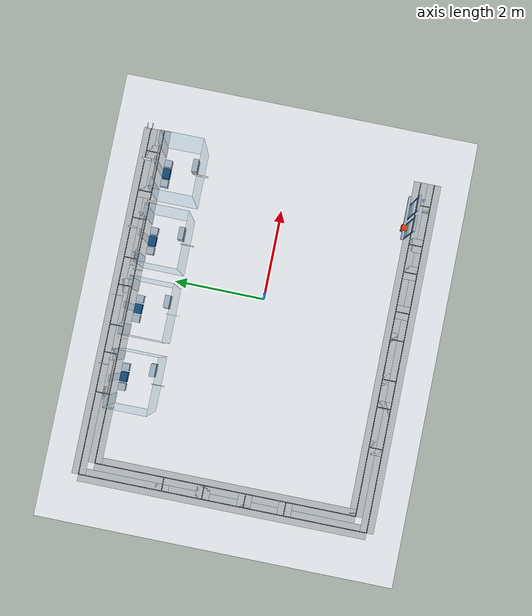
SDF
<sdf version="1.9">
 <world name="wafer_transport">
  <model name="loop_floor">
   <static>true</static>
   <link name="structure">
    <inertial>
     <mass>0.1</mass>
     <inertia>
      <ixx>0.00016666666666666672</ixx>
      <iyy>0.00016666666666666672</iyy>
      <izz>0.00016666666666666672</izz>
      <ixy>0</ixy>
      <ixz>0</ixz>
      <iyz>0</iyz>
     </inertia>
    </inertial>
    <visual name="floor">
     <pose>-0.65 0.0 -0.015 0 0 0</pose>
     <geometry><box><size>10.0 8.0 0.03</size></box></geometry>
     <material><ambient>0.93 0.95 0.97 1</ambient><diffuse>0.93 0.95 0.97 1</diffuse></material>
    </visual>
    <collision name="floor_collision">
     <pose>-0.65 0.0 -0.015 0 0 0</pose>
     <geometry><box><size>10.0 8.0 0.03</size></box></geometry>
     <surface><friction><ode><mu>0.9</mu><mu2>0.9</mu2></ode></friction></surface>
    </collision>
    <visual name="corridor_0">
     <pose>-0.6672 3.2224 0.00015 0 0 3.141592653589793</pose>
     <geometry><box><size>7.8275999999999994 0.3048 0.0002</size></box></geometry>
     <material><ambient>.72 .75 .77 1</ambient><diffuse>.72 .75 .77 1</diffuse></material>
    </visual>
    <visual name="tape_0">
     <pose>-0.6672 3.2224 0.0003 0 0 3.141592653589793</pose>
     <geometry><box><size>7.8266 0.018 0.0005</size></box></geometry>
     <material><ambient>.005 .005 .005 1</ambient><diffuse>.005 .005 .005 1</diffuse></material>
    </visual>
    <visual name="corridor_1">
     <pose>-4.58 0.0 0.00015 0 0 -1.5707963267948966</pose>
     <geometry><box><size>6.4468 0.3048 0.0002</size></box></geometry>
     <material><ambient>.72 .75 .77 1</ambient><diffuse>.72 .75 .77 1</diffuse></material>
    </visual>
    <visual name="tape_1">
     <pose>-4.58 0.0 0.0003 0 0 -1.5707963267948966</pose>
     <geometry><box><size>6.4458 0.018 0.0005</size></box></geometry>
     <material><ambient>.005 .005 .005 1</ambient><diffuse>.005 .005 .005 1</diffuse></material>
    </visual>
    <visual name="corridor_2">
     <pose>-0.6672 -3.2224 0.00015 0 0 0.0</pose>
     <geometry><box><size>7.8275999999999994 0.3048 0.0002</size></box></geometry>
     <material><ambient>.72 .75 .77 1</ambient><diffuse>.72 .75 .77 1</diffuse></material>
    </visual>
    <visual name="tape_2">
     <pose>-0.6672 -3.2224 0.0003 0 0 0.0</pose>
     <geometry><box><size>7.8266 0.018 0.0005</size></box></geometry>
     <material><ambient>.005 .005 .005 1</ambient><diffuse>.005 .005 .005 1</diffuse></material>
    </visual>
    <visual name="corridor_3">
     <pose>-0.5147999999999999 2.9175999999999997 0.00015 0 0 3.141592653589793</pose>
     <geometry><box><size>7.522799999999999 0.3048 0.0002</size></box></geometry>
     <material><ambient>.72 .75 .77 1</ambient><diffuse>.72 .75 .77 1</diffuse></material>
    </visual>
    <visual name="tape_3">
     <pose>-0.5147999999999999 2.9175999999999997 0.0003 0 0 3.141592653589793</pose>
     <geometry><box><size>7.5218 0.018 0.0005</size></box></geometry>
     <material><ambient>.005 .005 .005 1</ambient><diffuse>.005 .005 .005 1</diffuse></material>
    </visual>
    <visual name="corridor_4">
     <pose>-4.2752 0.0 0.00015 0 0 -1.5707963267948966</pose>
     <geometry><box><size>5.837199999999999 0.3048 0.0002</size></box></geometry>
     <material><ambient>.72 .75 .77 1</ambient><diffuse>.72 .75 .77 1</diffuse></material>
    </visual>
    <visual name="tape_4">
     <pose>-4.2752 0.0 0.0003 0 0 -1.5707963267948966</pose>
     <geometry><box><size>5.8362 0.018 0.0005</size></box></geometry>
     <material><ambient>.005 .005 .005 1</ambient><diffuse>.005 .005 .005 1</diffuse></material>
    </visual>
    <visual name="corridor_5">
     <pose>-0.5147999999999999 -2.9175999999999997 0.00015 0 0 0.0</pose>
     <geometry><box><size>7.522799999999999 0.3048 0.0002</size></box></geometry>
     <material><ambient>.72 .75 .77 1</ambient><diffuse>.72 .75 .77 1</diffuse></material>
    </visual>
    <visual name="tape_5">
     <pose>-0.5147999999999999 -2.9175999999999997 0.0003 0 0 0.0</pose>
     <geometry><box><size>7.5218 0.018 0.0005</size></box></geometry>
     <material><ambient>.005 .005 .005 1</ambient><diffuse>.005 .005 .005 1</diffuse></material>
    </visual>
    <visual name="corridor_6">
     <pose>2.736 3.07 0.00015 0 0 -1.5707963267948966</pose>
     <geometry><box><size>0.3068000000000002 0.3048 0.0002</size></box></geometry>
     <material><ambient>.72 .75 .77 1</ambient><diffuse>.72 .75 .77 1</diffuse></material>
    </visual>
    <visual name="tape_6">
     <pose>2.736 3.07 0.0003 0 0 -1.5707963267948966</pose>
     <geometry><box><size>0.3058000000000002 0.018 0.0005</size></box></geometry>
     <material><ambient>.005 .005 .005 1</ambient><diffuse>.005 .005 .005 1</diffuse></material>
    </visual>
    <visual name="corridor_7">
     <pose>1.2120000000000002 3.07 0.00015 0 0 -1.5707963267948974</pose>
     <geometry><box><size>0.3068000000000002 0.3048 0.0002</size></box></geometry>
     <material><ambient>.72 .75 .77 1</ambient><diffuse>.72 .75 .77 1</diffuse></material>
    </visual>
    <visual name="tape_7">
     <pose>1.2120000000000002 3.07 0.0003 0 0 -1.5707963267948974</pose>
     <geometry><box><size>0.3058000000000002 0.018 0.0005</size></box></geometry>
     <material><ambient>.005 .005 .005 1</ambient><diffuse>.005 .005 .005 1</diffuse></material>
    </visual>
    <visual name="corridor_8">
     <pose>-0.31199999999999994 3.07 0.00015 0 0 -1.5707963267948968</pose>
     <geometry><box><size>0.3068000000000002 0.3048 0.0002</size></box></geometry>
     <material><ambient>.72 .75 .77 1</ambient><diffuse>.72 .75 .77 1</diffuse></material>
    </visual>
    <visual name="tape_8">
     <pose>-0.31199999999999994 3.07 0.0003 0 0 -1.5707963267948968</pose>
     <geometry><box><size>0.3058000000000002 0.018 0.0005</size></box></geometry>
     <material><ambient>.005 .005 .005 1</ambient><diffuse>.005 .005 .005 1</diffuse></material>
    </visual>
    <visual name="corridor_9">
     <pose>-1.8359999999999999 3.07 0.00015 0 0 -1.5707963267948974</pose>
     <geometry><box><size>0.3068000000000002 0.3048 0.0002</size></box></geometry>
     <material><ambient>.72 .75 .77 1</ambient><diffuse>.72 .75 .77 1</diffuse></material>
    </visual>
    <visual name="tape_9">
     <pose>-1.8359999999999999 3.07 0.0003 0 0 -1.5707963267948974</pose>
     <geometry><box><size>0.3058000000000002 0.018 0.0005</size></box></geometry>
     <material><ambient>.005 .005 .005 1</ambient><diffuse>.005 .005 .005 1</diffuse></material>
    </visual>
    <visual name="corridor_10">
     <pose>-4.4276 1.3644 0.00015 0 0 0.0</pose>
     <geometry><box><size>0.3068000000000002 0.3048 0.0002</size></box></geometry>
     <material><ambient>.72 .75 .77 1</ambient><diffuse>.72 .75 .77 1</diffuse></material>
    </visual>
    <visual name="tape_10">
     <pose>-4.4276 1.3644 0.0003 0 0 0.0</pose>
     <geometry><box><size>0.3058000000000002 0.018 0.0005</size></box></geometry>
     <material><ambient>.005 .005 .005 1</ambient><diffuse>.005 .005 .005 1</diffuse></material>
    </visual>
    <visual name="corridor_11">
     <pose>-4.4276 -0.46440000000000003 0.00015 0 0 0.0</pose>
     <geometry><box><size>0.3068000000000002 0.3048 0.0002</size></box></geometry>
     <material><ambient>.72 .75 .77 1</ambient><diffuse>.72 .75 .77 1</diffuse></material>
    </visual>
    <visual name="tape_11">
     <pose>-4.4276 -0.46440000000000003 0.0003 0 0 0.0</pose>
     <geometry><box><size>0.3058000000000002 0.018 0.0005</size></box></geometry>
     <material><ambient>.005 .005 .005 1</ambient><diffuse>.005 .005 .005 1</diffuse></material>
    </visual>
    <visual name="corridor_12">
     <pose>-2.736 -3.07 0.00015 0 0 1.5707963267948966</pose>
     <geometry><box><size>0.3068000000000002 0.3048 0.0002</size></box></geometry>
     <material><ambient>.72 .75 .77 1</ambient><diffuse>.72 .75 .77 1</diffuse></material>
    </visual>
    <visual name="tape_12">
     <pose>-2.736 -3.07 0.0003 0 0 1.5707963267948966</pose>
     <geometry><box><size>0.3058000000000002 0.018 0.0005</size></box></geometry>
     <material><ambient>.005 .005 .005 1</ambient><diffuse>.005 .005 .005 1</diffuse></material>
    </visual>
    <visual name="corridor_13">
     <pose>-1.212 -3.07 0.00015 0 0 1.5707963267948966</pose>
     <geometry><box><size>0.3068000000000002 0.3048 0.0002</size></box></geometry>
     <material><ambient>.72 .75 .77 1</ambient><diffuse>.72 .75 .77 1</diffuse></material>
    </visual>
    <visual name="tape_13">
     <pose>-1.212 -3.07 0.0003 0 0 1.5707963267948966</pose>
     <geometry><box><size>0.3058000000000002 0.018 0.0005</size></box></geometry>
     <material><ambient>.005 .005 .005 1</ambient><diffuse>.005 .005 .005 1</diffuse></material>
    </visual>
    <visual name="corridor_14">
     <pose>0.312 -3.07 0.00015 0 0 1.5707963267948966</pose>
     <geometry><box><size>0.3068000000000002 0.3048 0.0002</size></box></geometry>
     <material><ambient>.72 .75 .77 1</ambient><diffuse>.72 .75 .77 1</diffuse></material>
    </visual>
    <visual name="tape_14">
     <pose>0.312 -3.07 0.0003 0 0 1.5707963267948966</pose>
     <geometry><box><size>0.3058000000000002 0.018 0.0005</size></box></geometry>
     <material><ambient>.005 .005 .005 1</ambient><diffuse>.005 .005 .005 1</diffuse></material>
    </visual>
    <visual name="corridor_15">
     <pose>1.836 -3.07 0.00015 0 0 1.5707963267948966</pose>
     <geometry><box><size>0.3068000000000002 0.3048 0.0002</size></box></geometry>
     <material><ambient>.72 .75 .77 1</ambient><diffuse>.72 .75 .77 1</diffuse></material>
    </visual>
    <visual name="tape_15">
     <pose>1.836 -3.07 0.0003 0 0 1.5707963267948966</pose>
     <geometry><box><size>0.3058000000000002 0.018 0.0005</size></box></geometry>
     <material><ambient>.005 .005 .005 1</ambient><diffuse>.005 .005 .005 1</diffuse></material>
    </visual>
    <visual name="corridor_16">
     <pose>1.8360000000000003 3.07 0.00015 0 0 1.570796326794896</pose>
     <geometry><box><size>0.3068000000000002 0.3048 0.0002</size></box></geometry>
     <material><ambient>.72 .75 .77 1</ambient><diffuse>.72 .75 .77 1</diffuse></material>
    </visual>
    <visual name="tape_16">
     <pose>1.8360000000000003 3.07 0.0003 0 0 1.570796326794896</pose>
     <geometry><box><size>0.3058000000000002 0.018 0.0005</size></box></geometry>
     <material><ambient>.005 .005 .005 1</ambient><diffuse>.005 .005 .005 1</diffuse></material>
    </visual>
    <visual name="corridor_17">
     <pose>0.31200000000000006 3.07 0.00015 0 0 1.5707963267948963</pose>
     <geometry><box><size>0.3068000000000002 0.3048 0.0002</size></box></geometry>
     <material><ambient>.72 .75 .77 1</ambient><diffuse>.72 .75 .77 1</diffuse></material>
    </visual>
    <visual name="tape_17">
     <pose>0.31200000000000006 3.07 0.0003 0 0 1.5707963267948963</pose>
     <geometry><box><size>0.3058000000000002 0.018 0.0005</size></box></geometry>
     <material><ambient>.005 .005 .005 1</ambient><diffuse>.005 .005 .005 1</diffuse></material>
    </visual>
    <visual name="corridor_18">
     <pose>-1.2119999999999997 3.07 0.00015 0 0 1.570796326794896</pose>
     <geometry><box><size>0.3068000000000002 0.3048 0.0002</size></box></geometry>
     <material><ambient>.72 .75 .77 1</ambient><diffuse>.72 .75 .77 1</diffuse></material>
    </visual>
    <visual name="tape_18">
     <pose>-1.2119999999999997 3.07 0.0003 0 0 1.570796326794896</pose>
     <geometry><box><size>0.3058000000000002 0.018 0.0005</size></box></geometry>
     <material><ambient>.005 .005 .005 1</ambient><diffuse>.005 .005 .005 1</diffuse></material>
    </visual>
    <visual name="corridor_19">
     <pose>-2.736 3.07 0.00015 0 0 1.5707963267948966</pose>
     <geometry><box><size>0.3068000000000002 0.3048 0.0002</size></box></geometry>
     <material><ambient>.72 .75 .77 1</ambient><diffuse>.72 .75 .77 1</diffuse></material>
    </visual>
    <visual name="tape_19">
     <pose>-2.736 3.07 0.0003 0 0 1.5707963267948966</pose>
     <geometry><box><size>0.3058000000000002 0.018 0.0005</size></box></geometry>
     <material><ambient>.005 .005 .005 1</ambient><diffuse>.005 .005 .005 1</diffuse></material>
    </visual>
    <visual name="corridor_20">
     <pose>-4.4276 0.4643999999999999 0.00015 0 0 3.141592653589793</pose>
     <geometry><box><size>0.3068000000000002 0.3048 0.0002</size></box></geometry>
     <material><ambient>.72 .75 .77 1</ambient><diffuse>.72 .75 .77 1</diffuse></material>
    </visual>
    <visual name="tape_20">
     <pose>-4.4276 0.4643999999999999 0.0003 0 0 3.141592653589793</pose>
     <geometry><box><size>0.3058000000000002 0.018 0.0005</size></box></geometry>
     <material><ambient>.005 .005 .005 1</ambient><diffuse>.005 .005 .005 1</diffuse></material>
    </visual>
    <visual name="corridor_21">
     <pose>-4.4276 -1.3644 0.00015 0 0 3.141592653589793</pose>
     <geometry><box><size>0.3068000000000002 0.3048 0.0002</size></box></geometry>
     <material><ambient>.72 .75 .77 1</ambient><diffuse>.72 .75 .77 1</diffuse></material>
    </visual>
    <visual name="tape_21">
     <pose>-4.4276 -1.3644 0.0003 0 0 3.141592653589793</pose>
     <geometry><box><size>0.3058000000000002 0.018 0.0005</size></box></geometry>
     <material><ambient>.005 .005 .005 1</ambient><diffuse>.005 .005 .005 1</diffuse></material>
    </visual>
    <visual name="corridor_22">
     <pose>-1.836 -3.07 0.00015 0 0 -1.5707963267948966</pose>
     <geometry><box><size>0.3068000000000002 0.3048 0.0002</size></box></geometry>
     <material><ambient>.72 .75 .77 1</ambient><diffuse>.72 .75 .77 1</diffuse></material>
    </visual>
    <visual name="tape_22">
     <pose>-1.836 -3.07 0.0003 0 0 -1.5707963267948966</pose>
     <geometry><box><size>0.3058000000000002 0.018 0.0005</size></box></geometry>
     <material><ambient>.005 .005 .005 1</ambient><diffuse>.005 .005 .005 1</diffuse></material>
    </visual>
    <visual name="corridor_23">
     <pose>-0.312 -3.07 0.00015 0 0 -1.5707963267948966</pose>
     <geometry><box><size>0.3068000000000002 0.3048 0.0002</size></box></geometry>
     <material><ambient>.72 .75 .77 1</ambient><diffuse>.72 .75 .77 1</diffuse></material>
    </visual>
    <visual name="tape_23">
     <pose>-0.312 -3.07 0.0003 0 0 -1.5707963267948966</pose>
     <geometry><box><size>0.3058000000000002 0.018 0.0005</size></box></geometry>
     <material><ambient>.005 .005 .005 1</ambient><diffuse>.005 .005 .005 1</diffuse></material>
    </visual>
    <visual name="corridor_24">
     <pose>1.212 -3.07 0.00015 0 0 -1.5707963267948966</pose>
     <geometry><box><size>0.3068000000000002 0.3048 0.0002</size></box></geometry>
     <material><ambient>.72 .75 .77 1</ambient><diffuse>.72 .75 .77 1</diffuse></material>
    </visual>
    <visual name="tape_24">
     <pose>1.212 -3.07 0.0003 0 0 -1.5707963267948966</pose>
     <geometry><box><size>0.3058000000000002 0.018 0.0005</size></box></geometry>
     <material><ambient>.005 .005 .005 1</ambient><diffuse>.005 .005 .005 1</diffuse></material>
    </visual>
    <visual name="corridor_25">
     <pose>2.736 -3.07 0.00015 0 0 -1.5707963267948966</pose>
     <geometry><box><size>0.3068000000000002 0.3048 0.0002</size></box></geometry>
     <material><ambient>.72 .75 .77 1</ambient><diffuse>.72 .75 .77 1</diffuse></material>
    </visual>
    <visual name="tape_25">
     <pose>2.736 -3.07 0.0003 0 0 -1.5707963267948966</pose>
     <geometry><box><size>0.3058000000000002 0.018 0.0005</size></box></geometry>
     <material><ambient>.005 .005 .005 1</ambient><diffuse>.005 .005 .005 1</diffuse></material>
    </visual>
    <visual name="loading_rail_-0.054">
     <pose>3.2456 3.1684 0.142 0 0 0</pose>
     <geometry><box><size>0.15 0.016 0.008</size></box></geometry>
     <material><ambient>0.65 0.72 0.78 1</ambient><diffuse>0.65 0.72 0.78 1</diffuse></material>
    </visual>
    <collision name="loading_rail_-0.054_collision">
     <pose>3.2456 3.1684 0.142 0 0 0</pose>
     <geometry><box><size>0.15 0.016 0.008</size></box></geometry>
     <surface><friction><ode><mu>0.9</mu><mu2>0.9</mu2></ode></friction></surface>
    </collision>
    <visual name="loading_rail_0.054">
     <pose>3.2456 3.2763999999999998 0.142 0 0 0</pose>
     <geometry><box><size>0.15 0.016 0.008</size></box></geometry>
     <material><ambient>0.65 0.72 0.78 1</ambient><diffuse>0.65 0.72 0.78 1</diffuse></material>
    </visual>
    <collision name="loading_rail_0.054_collision">
     <pose>3.2456 3.2763999999999998 0.142 0 0 0</pose>
     <geometry><box><size>0.15 0.016 0.008</size></box></geometry>
     <surface><friction><ode><mu>0.9</mu><mu2>0.9</mu2></ode></friction></surface>
    </collision>
   </link>
  </model>
  <model name="room_1">
   <static>true</static>
   <link name="structure">
    <inertial>
     <mass>0.1</mass>
     <inertia>
      <ixx>0.00016666666666666672</ixx>
      <iyy>0.00016666666666666672</iyy>
      <izz>0.00016666666666666672</izz>
      <ixy>0</ixy>
      <ixz>0</ixz>
      <iyz>0</iyz>
     </inertia>
    </inertial>
    <visual name="glass_back">
     <pose>2.286 1.8427999999999998 0.6096 0 0 3.141592653589793</pose>
     <geometry><box><size>1.2192 0.012 1.2192</size></box></geometry>
     <material><ambient>.5 .75 .9 1</ambient><diffuse>.5 .75 .9 1</diffuse></material>
     <transparency>0.82</transparency>
    </visual>
    <collision name="glass_back_collision">
     <pose>2.286 1.8427999999999998 0.6096 0 0 3.141592653589793</pose>
     <geometry><box><size>1.2192 0.012 1.2192</size></box></geometry>
     <surface><friction><ode><mu>0.9</mu><mu2>0.9</mu2></ode></friction></surface>
    </collision>
    <visual name="glass_left">
     <pose>2.8956 2.3 0.6096 0 0 3.141592653589793</pose>
     <geometry><box><size>0.012 0.9144 1.2192</size></box></geometry>
     <material><ambient>.5 .75 .9 1</ambient><diffuse>.5 .75 .9 1</diffuse></material>
     <transparency>0.82</transparency>
    </visual>
    <collision name="glass_left_collision">
     <pose>2.8956 2.3 0.6096 0 0 3.141592653589793</pose>
     <geometry><box><size>0.012 0.9144 1.2192</size></box></geometry>
     <surface><friction><ode><mu>0.9</mu><mu2>0.9</mu2></ode></friction></surface>
    </collision>
    <visual name="glass_right">
     <pose>1.6764000000000001 2.3 0.6096 0 0 3.141592653589793</pose>
     <geometry><box><size>0.012 0.9144 1.2192</size></box></geometry>
     <material><ambient>.5 .75 .9 1</ambient><diffuse>.5 .75 .9 1</diffuse></material>
     <transparency>0.82</transparency>
    </visual>
    <collision name="glass_right_collision">
     <pose>1.6764000000000001 2.3 0.6096 0 0 3.141592653589793</pose>
     <geometry><box><size>0.012 0.9144 1.2192</size></box></geometry>
     <surface><friction><ode><mu>0.9</mu><mu2>0.9</mu2></ode></friction></surface>
    </collision>
    <visual name="glass_front_0">
     <pose>2.777 2.7571999999999997 0.6096 0 0 3.141592653589793</pose>
     <geometry><box><size>0.23720000000000002 0.012 1.2192</size></box></geometry>
     <material><ambient>.5 .75 .9 1</ambient><diffuse>.5 .75 .9 1</diffuse></material>
     <transparency>0.82</transparency>
    </visual>
    <collision name="glass_front_0_collision">
     <pose>2.777 2.7571999999999997 0.6096 0 0 3.141592653589793</pose>
     <geometry><box><size>0.23720000000000002 0.012 1.2192</size></box></geometry>
     <surface><friction><ode><mu>0.9</mu><mu2>0.9</mu2></ode></friction></surface>
    </collision>
    <visual name="glass_front_1">
     <pose>2.286 2.7571999999999997 0.6096 0 0 3.141592653589793</pose>
     <geometry><box><size>0.1352 0.012 1.2192</size></box></geometry>
     <material><ambient>.5 .75 .9 1</ambient><diffuse>.5 .75 .9 1</diffuse></material>
     <transparency>0.82</transparency>
    </visual>
    <collision name="glass_front_1_collision">
     <pose>2.286 2.7571999999999997 0.6096 0 0 3.141592653589793</pose>
     <geometry><box><size>0.1352 0.012 1.2192</size></box></geometry>
     <surface><friction><ode><mu>0.9</mu><mu2>0.9</mu2></ode></friction></surface>
    </collision>
    <visual name="glass_front_2">
     <pose>1.795 2.7571999999999997 0.6096 0 0 3.141592653589793</pose>
     <geometry><box><size>0.23720000000000002 0.012 1.2192</size></box></geometry>
     <material><ambient>.5 .75 .9 1</ambient><diffuse>.5 .75 .9 1</diffuse></material>
     <transparency>0.82</transparency>
    </visual>
    <collision name="glass_front_2_collision">
     <pose>1.795 2.7571999999999997 0.6096 0 0 3.141592653589793</pose>
     <geometry><box><size>0.23720000000000002 0.012 1.2192</size></box></geometry>
     <surface><friction><ode><mu>0.9</mu><mu2>0.9</mu2></ode></friction></surface>
    </collision>
    <visual name="process_stage">
     <pose>2.286 2.6571999999999996 0.077 0 0 3.141592653589793</pose>
     <geometry><box><size>0.22 0.16 0.154</size></box></geometry>
     <material><ambient>0.06 0.30 0.48 1</ambient><diffuse>0.06 0.30 0.48 1</diffuse></material>
    </visual>
    <collision name="process_stage_collision">
     <pose>2.286 2.6571999999999996 0.077 0 0 3.141592653589793</pose>
     <geometry><box><size>0.22 0.16 0.154</size></box></geometry>
     <surface><friction><ode><mu>0.9</mu><mu2>0.9</mu2></ode></friction></surface>
    </collision>
    <visual name="entry_handoff">
     <pose>2.5060000000000002 2.6571999999999996 0.077 0 0 3.141592653589793</pose>
     <geometry><box><size>0.16 0.16 0.154</size></box></geometry>
     <material><ambient>0.65 0.72 0.78 1</ambient><diffuse>0.65 0.72 0.78 1</diffuse></material>
    </visual>
    <collision name="entry_handoff_collision">
     <pose>2.5060000000000002 2.6571999999999996 0.077 0 0 3.141592653589793</pose>
     <geometry><box><size>0.16 0.16 0.154</size></box></geometry>
     <surface><friction><ode><mu>0.9</mu><mu2>0.9</mu2></ode></friction></surface>
    </collision>
    <visual name="exit_handoff">
     <pose>2.066 2.6571999999999996 0.077 0 0 3.141592653589793</pose>
     <geometry><box><size>0.16 0.16 0.154</size></box></geometry>
     <material><ambient>0.65 0.72 0.78 1</ambient><diffuse>0.65 0.72 0.78 1</diffuse></material>
    </visual>
    <collision name="exit_handoff_collision">
     <pose>2.066 2.6571999999999996 0.077 0 0 3.141592653589793</pose>
     <geometry><box><size>0.16 0.16 0.154</size></box></geometry>
     <surface><friction><ode><mu>0.9</mu><mu2>0.9</mu2></ode></friction></surface>
    </collision>
    <visual name="equipment">
     <pose>2.556 2.05 0.14 0 0 3.141592653589793</pose>
     <geometry><box><size>0.28 0.12 0.28</size></box></geometry>
     <material><ambient>0.65 0.72 0.78 1</ambient><diffuse>0.65 0.72 0.78 1</diffuse></material>
    </visual>
    <collision name="equipment_collision">
     <pose>2.556 2.05 0.14 0 0 3.141592653589793</pose>
     <geometry><box><size>0.28 0.12 0.28</size></box></geometry>
     <surface><friction><ode><mu>0.9</mu><mu2>0.9</mu2></ode></friction></surface>
    </collision>
    <visual name="entry_apriltag">
     <pose>2.486 3.1174 0.27 1.5707963267948966 0 7.853981633974483</pose>
     <geometry><plane><normal>0 0 1</normal><size>0.2 0.2</size></plane></geometry>
     <material>
      <ambient>1 1 1 1</ambient>
      <diffuse>1 1 1 1</diffuse>
      <emissive>0.35 0.35 0.35 1</emissive>
      <pbr>
       <metal>
        <albedo_map>../textures/room_1_entry_apriltag.png</albedo_map>
        <metalness>0</metalness>
        <roughness>1</roughness>
       </metal>
      </pbr>
     </material>
     <cast_shadows>false</cast_shadows>
    </visual>
    <visual name="exit_apriltag">
     <pose>1.586 2.8125999999999998 0.27 1.5707963267948966 0 7.853981633974483</pose>
     <geometry><plane><normal>0 0 1</normal><size>0.2 0.2</size></plane></geometry>
     <material>
      <ambient>1 1 1 1</ambient>
      <diffuse>1 1 1 1</diffuse>
      <emissive>0.35 0.35 0.35 1</emissive>
      <pbr>
       <metal>
        <albedo_map>../textures/room_1_exit_apriltag.png</albedo_map>
        <metalness>0</metalness>
        <roughness>1</roughness>
       </metal>
      </pbr>
     </material>
     <cast_shadows>false</cast_shadows>
    </visual>
    <visual name="room_label">
     <pose>2.286 2.7662 0.98 1.5707963267948966 0 3.141592653589793</pose>
     <geometry><plane><normal>0 0 1</normal><size>0.7 0.1</size></plane></geometry>
     <material>
      <ambient>1 1 1 1</ambient>
      <diffuse>1 1 1 1</diffuse>
      <emissive>0.35 0.35 0.35 1</emissive>
      <pbr>
       <metal>
        <albedo_map>../textures/room_1_label.png</albedo_map>
        <metalness>0</metalness>
        <roughness>1</roughness>
       </metal>
      </pbr>
     </material>
     <cast_shadows>false</cast_shadows>
    </visual>
    <visual name="microalchemy_logo">
     <pose>2.286 1.8327999999999998 0.55 1.5707963267948966 0 4.71238898038469</pose>
     <geometry><plane><normal>0 0 1</normal><size>0.3 0.15</size></plane></geometry>
     <material>
      <ambient>1 1 1 1</ambient>
      <diffuse>1 1 1 1</diffuse>
      <emissive>0.35 0.35 0.35 1</emissive>
      <pbr>
       <metal>
        <albedo_map>../textures/microalchemy_logo.png</albedo_map>
        <metalness>0</metalness>
        <roughness>1</roughness>
       </metal>
      </pbr>
     </material>
     <cast_shadows>false</cast_shadows>
    </visual>
   </link>
  </model>
  <model name="room_2">
   <static>true</static>
   <link name="structure">
    <inertial>
     <mass>0.1</mass>
     <inertia>
      <ixx>0.00016666666666666672</ixx>
      <iyy>0.00016666666666666672</iyy>
      <izz>0.00016666666666666672</izz>
      <ixy>0</ixy>
      <ixz>0</ixz>
      <iyz>0</iyz>
     </inertia>
    </inertial>
    <visual name="glass_back">
     <pose>0.7619999999999999 1.8427999999999998 0.6096 0 0 3.141592653589793</pose>
     <geometry><box><size>1.2192 0.012 1.2192</size></box></geometry>
     <material><ambient>.5 .75 .9 1</ambient><diffuse>.5 .75 .9 1</diffuse></material>
     <transparency>0.82</transparency>
    </visual>
    <collision name="glass_back_collision">
     <pose>0.7619999999999999 1.8427999999999998 0.6096 0 0 3.141592653589793</pose>
     <geometry><box><size>1.2192 0.012 1.2192</size></box></geometry>
     <surface><friction><ode><mu>0.9</mu><mu2>0.9</mu2></ode></friction></surface>
    </collision>
    <visual name="glass_left">
     <pose>1.3716 2.3 0.6096 0 0 3.141592653589793</pose>
     <geometry><box><size>0.012 0.9144 1.2192</size></box></geometry>
     <material><ambient>.5 .75 .9 1</ambient><diffuse>.5 .75 .9 1</diffuse></material>
     <transparency>0.82</transparency>
    </visual>
    <collision name="glass_left_collision">
     <pose>1.3716 2.3 0.6096 0 0 3.141592653589793</pose>
     <geometry><box><size>0.012 0.9144 1.2192</size></box></geometry>
     <surface><friction><ode><mu>0.9</mu><mu2>0.9</mu2></ode></friction></surface>
    </collision>
    <visual name="glass_right">
     <pose>0.15239999999999998 2.3 0.6096 0 0 3.141592653589793</pose>
     <geometry><box><size>0.012 0.9144 1.2192</size></box></geometry>
     <material><ambient>.5 .75 .9 1</ambient><diffuse>.5 .75 .9 1</diffuse></material>
     <transparency>0.82</transparency>
    </visual>
    <collision name="glass_right_collision">
     <pose>0.15239999999999998 2.3 0.6096 0 0 3.141592653589793</pose>
     <geometry><box><size>0.012 0.9144 1.2192</size></box></geometry>
     <surface><friction><ode><mu>0.9</mu><mu2>0.9</mu2></ode></friction></surface>
    </collision>
    <visual name="glass_front_0">
     <pose>1.2530000000000001 2.7571999999999997 0.6096 0 0 3.141592653589793</pose>
     <geometry><box><size>0.23720000000000002 0.012 1.2192</size></box></geometry>
     <material><ambient>.5 .75 .9 1</ambient><diffuse>.5 .75 .9 1</diffuse></material>
     <transparency>0.82</transparency>
    </visual>
    <collision name="glass_front_0_collision">
     <pose>1.2530000000000001 2.7571999999999997 0.6096 0 0 3.141592653589793</pose>
     <geometry><box><size>0.23720000000000002 0.012 1.2192</size></box></geometry>
     <surface><friction><ode><mu>0.9</mu><mu2>0.9</mu2></ode></friction></surface>
    </collision>
    <visual name="glass_front_1">
     <pose>0.7620000000000001 2.7571999999999997 0.6096 0 0 3.141592653589793</pose>
     <geometry><box><size>0.1352 0.012 1.2192</size></box></geometry>
     <material><ambient>.5 .75 .9 1</ambient><diffuse>.5 .75 .9 1</diffuse></material>
     <transparency>0.82</transparency>
    </visual>
    <collision name="glass_front_1_collision">
     <pose>0.7620000000000001 2.7571999999999997 0.6096 0 0 3.141592653589793</pose>
     <geometry><box><size>0.1352 0.012 1.2192</size></box></geometry>
     <surface><friction><ode><mu>0.9</mu><mu2>0.9</mu2></ode></friction></surface>
    </collision>
    <visual name="glass_front_2">
     <pose>0.2710000000000001 2.7571999999999997 0.6096 0 0 3.141592653589793</pose>
     <geometry><box><size>0.23720000000000002 0.012 1.2192</size></box></geometry>
     <material><ambient>.5 .75 .9 1</ambient><diffuse>.5 .75 .9 1</diffuse></material>
     <transparency>0.82</transparency>
    </visual>
    <collision name="glass_front_2_collision">
     <pose>0.2710000000000001 2.7571999999999997 0.6096 0 0 3.141592653589793</pose>
     <geometry><box><size>0.23720000000000002 0.012 1.2192</size></box></geometry>
     <surface><friction><ode><mu>0.9</mu><mu2>0.9</mu2></ode></friction></surface>
    </collision>
    <visual name="process_stage">
     <pose>0.762 2.6571999999999996 0.077 0 0 3.141592653589793</pose>
     <geometry><box><size>0.22 0.16 0.154</size></box></geometry>
     <material><ambient>0.06 0.30 0.48 1</ambient><diffuse>0.06 0.30 0.48 1</diffuse></material>
    </visual>
    <collision name="process_stage_collision">
     <pose>0.762 2.6571999999999996 0.077 0 0 3.141592653589793</pose>
     <geometry><box><size>0.22 0.16 0.154</size></box></geometry>
     <surface><friction><ode><mu>0.9</mu><mu2>0.9</mu2></ode></friction></surface>
    </collision>
    <visual name="entry_handoff">
     <pose>0.982 2.6571999999999996 0.077 0 0 3.141592653589793</pose>
     <geometry><box><size>0.16 0.16 0.154</size></box></geometry>
     <material><ambient>0.65 0.72 0.78 1</ambient><diffuse>0.65 0.72 0.78 1</diffuse></material>
    </visual>
    <collision name="entry_handoff_collision">
     <pose>0.982 2.6571999999999996 0.077 0 0 3.141592653589793</pose>
     <geometry><box><size>0.16 0.16 0.154</size></box></geometry>
     <surface><friction><ode><mu>0.9</mu><mu2>0.9</mu2></ode></friction></surface>
    </collision>
    <visual name="exit_handoff">
     <pose>0.542 2.6571999999999996 0.077 0 0 3.141592653589793</pose>
     <geometry><box><size>0.16 0.16 0.154</size></box></geometry>
     <material><ambient>0.65 0.72 0.78 1</ambient><diffuse>0.65 0.72 0.78 1</diffuse></material>
    </visual>
    <collision name="exit_handoff_collision">
     <pose>0.542 2.6571999999999996 0.077 0 0 3.141592653589793</pose>
     <geometry><box><size>0.16 0.16 0.154</size></box></geometry>
     <surface><friction><ode><mu>0.9</mu><mu2>0.9</mu2></ode></friction></surface>
    </collision>
    <visual name="equipment">
     <pose>1.032 2.05 0.14 0 0 3.141592653589793</pose>
     <geometry><box><size>0.28 0.12 0.28</size></box></geometry>
     <material><ambient>0.65 0.72 0.78 1</ambient><diffuse>0.65 0.72 0.78 1</diffuse></material>
    </visual>
    <collision name="equipment_collision">
     <pose>1.032 2.05 0.14 0 0 3.141592653589793</pose>
     <geometry><box><size>0.28 0.12 0.28</size></box></geometry>
     <surface><friction><ode><mu>0.9</mu><mu2>0.9</mu2></ode></friction></surface>
    </collision>
    <visual name="entry_apriltag">
     <pose>0.9620000000000001 3.1174 0.27 1.5707963267948966 0 7.853981633974483</pose>
     <geometry><plane><normal>0 0 1</normal><size>0.2 0.2</size></plane></geometry>
     <material>
      <ambient>1 1 1 1</ambient>
      <diffuse>1 1 1 1</diffuse>
      <emissive>0.35 0.35 0.35 1</emissive>
      <pbr>
       <metal>
        <albedo_map>../textures/room_2_entry_apriltag.png</albedo_map>
        <metalness>0</metalness>
        <roughness>1</roughness>
       </metal>
      </pbr>
     </material>
     <cast_shadows>false</cast_shadows>
    </visual>
    <visual name="exit_apriltag">
     <pose>0.06200000000000012 2.8125999999999998 0.27 1.5707963267948966 0 7.853981633974483</pose>
     <geometry><plane><normal>0 0 1</normal><size>0.2 0.2</size></plane></geometry>
     <material>
      <ambient>1 1 1 1</ambient>
      <diffuse>1 1 1 1</diffuse>
      <emissive>0.35 0.35 0.35 1</emissive>
      <pbr>
       <metal>
        <albedo_map>../textures/room_2_exit_apriltag.png</albedo_map>
        <metalness>0</metalness>
        <roughness>1</roughness>
       </metal>
      </pbr>
     </material>
     <cast_shadows>false</cast_shadows>
    </visual>
    <visual name="room_label">
     <pose>0.7620000000000001 2.7662 0.98 1.5707963267948966 0 3.141592653589793</pose>
     <geometry><plane><normal>0 0 1</normal><size>0.7 0.1</size></plane></geometry>
     <material>
      <ambient>1 1 1 1</ambient>
      <diffuse>1 1 1 1</diffuse>
      <emissive>0.35 0.35 0.35 1</emissive>
      <pbr>
       <metal>
        <albedo_map>../textures/room_2_label.png</albedo_map>
        <metalness>0</metalness>
        <roughness>1</roughness>
       </metal>
      </pbr>
     </material>
     <cast_shadows>false</cast_shadows>
    </visual>
    <visual name="microalchemy_logo">
     <pose>0.7619999999999999 1.8327999999999998 0.55 1.5707963267948966 0 4.71238898038469</pose>
     <geometry><plane><normal>0 0 1</normal><size>0.3 0.15</size></plane></geometry>
     <material>
      <ambient>1 1 1 1</ambient>
      <diffuse>1 1 1 1</diffuse>
      <emissive>0.35 0.35 0.35 1</emissive>
      <pbr>
       <metal>
        <albedo_map>../textures/microalchemy_logo.png</albedo_map>
        <metalness>0</metalness>
        <roughness>1</roughness>
       </metal>
      </pbr>
     </material>
     <cast_shadows>false</cast_shadows>
    </visual>
   </link>
  </model>
  <model name="room_3">
   <static>true</static>
   <link name="structure">
    <inertial>
     <mass>0.1</mass>
     <inertia>
      <ixx>0.00016666666666666672</ixx>
      <iyy>0.00016666666666666672</iyy>
      <izz>0.00016666666666666672</izz>
      <ixy>0</ixy>
      <ixz>0</ixz>
      <iyz>0</iyz>
     </inertia>
    </inertial>
    <visual name="glass_back">
     <pose>-0.7620000000000001 1.8427999999999998 0.6096 0 0 3.141592653589793</pose>
     <geometry><box><size>1.2192 0.012 1.2192</size></box></geometry>
     <material><ambient>.5 .75 .9 1</ambient><diffuse>.5 .75 .9 1</diffuse></material>
     <transparency>0.82</transparency>
    </visual>
    <collision name="glass_back_collision">
     <pose>-0.7620000000000001 1.8427999999999998 0.6096 0 0 3.141592653589793</pose>
     <geometry><box><size>1.2192 0.012 1.2192</size></box></geometry>
     <surface><friction><ode><mu>0.9</mu><mu2>0.9</mu2></ode></friction></surface>
    </collision>
    <visual name="glass_left">
     <pose>-0.15239999999999998 2.3 0.6096 0 0 3.141592653589793</pose>
     <geometry><box><size>0.012 0.9144 1.2192</size></box></geometry>
     <material><ambient>.5 .75 .9 1</ambient><diffuse>.5 .75 .9 1</diffuse></material>
     <transparency>0.82</transparency>
    </visual>
    <collision name="glass_left_collision">
     <pose>-0.15239999999999998 2.3 0.6096 0 0 3.141592653589793</pose>
     <geometry><box><size>0.012 0.9144 1.2192</size></box></geometry>
     <surface><friction><ode><mu>0.9</mu><mu2>0.9</mu2></ode></friction></surface>
    </collision>
    <visual name="glass_right">
     <pose>-1.3716 2.3 0.6096 0 0 3.141592653589793</pose>
     <geometry><box><size>0.012 0.9144 1.2192</size></box></geometry>
     <material><ambient>.5 .75 .9 1</ambient><diffuse>.5 .75 .9 1</diffuse></material>
     <transparency>0.82</transparency>
    </visual>
    <collision name="glass_right_collision">
     <pose>-1.3716 2.3 0.6096 0 0 3.141592653589793</pose>
     <geometry><box><size>0.012 0.9144 1.2192</size></box></geometry>
     <surface><friction><ode><mu>0.9</mu><mu2>0.9</mu2></ode></friction></surface>
    </collision>
    <visual name="glass_front_0">
     <pose>-0.27099999999999996 2.7571999999999997 0.6096 0 0 3.141592653589793</pose>
     <geometry><box><size>0.23720000000000002 0.012 1.2192</size></box></geometry>
     <material><ambient>.5 .75 .9 1</ambient><diffuse>.5 .75 .9 1</diffuse></material>
     <transparency>0.82</transparency>
    </visual>
    <collision name="glass_front_0_collision">
     <pose>-0.27099999999999996 2.7571999999999997 0.6096 0 0 3.141592653589793</pose>
     <geometry><box><size>0.23720000000000002 0.012 1.2192</size></box></geometry>
     <surface><friction><ode><mu>0.9</mu><mu2>0.9</mu2></ode></friction></surface>
    </collision>
    <visual name="glass_front_1">
     <pose>-0.7619999999999999 2.7571999999999997 0.6096 0 0 3.141592653589793</pose>
     <geometry><box><size>0.1352 0.012 1.2192</size></box></geometry>
     <material><ambient>.5 .75 .9 1</ambient><diffuse>.5 .75 .9 1</diffuse></material>
     <transparency>0.82</transparency>
    </visual>
    <collision name="glass_front_1_collision">
     <pose>-0.7619999999999999 2.7571999999999997 0.6096 0 0 3.141592653589793</pose>
     <geometry><box><size>0.1352 0.012 1.2192</size></box></geometry>
     <surface><friction><ode><mu>0.9</mu><mu2>0.9</mu2></ode></friction></surface>
    </collision>
    <visual name="glass_front_2">
     <pose>-1.2530000000000001 2.7571999999999997 0.6096 0 0 3.141592653589793</pose>
     <geometry><box><size>0.23720000000000002 0.012 1.2192</size></box></geometry>
     <material><ambient>.5 .75 .9 1</ambient><diffuse>.5 .75 .9 1</diffuse></material>
     <transparency>0.82</transparency>
    </visual>
    <collision name="glass_front_2_collision">
     <pose>-1.2530000000000001 2.7571999999999997 0.6096 0 0 3.141592653589793</pose>
     <geometry><box><size>0.23720000000000002 0.012 1.2192</size></box></geometry>
     <surface><friction><ode><mu>0.9</mu><mu2>0.9</mu2></ode></friction></surface>
    </collision>
    <visual name="process_stage">
     <pose>-0.762 2.6571999999999996 0.077 0 0 3.141592653589793</pose>
     <geometry><box><size>0.22 0.16 0.154</size></box></geometry>
     <material><ambient>0.06 0.30 0.48 1</ambient><diffuse>0.06 0.30 0.48 1</diffuse></material>
    </visual>
    <collision name="process_stage_collision">
     <pose>-0.762 2.6571999999999996 0.077 0 0 3.141592653589793</pose>
     <geometry><box><size>0.22 0.16 0.154</size></box></geometry>
     <surface><friction><ode><mu>0.9</mu><mu2>0.9</mu2></ode></friction></surface>
    </collision>
    <visual name="entry_handoff">
     <pose>-0.542 2.6571999999999996 0.077 0 0 3.141592653589793</pose>
     <geometry><box><size>0.16 0.16 0.154</size></box></geometry>
     <material><ambient>0.65 0.72 0.78 1</ambient><diffuse>0.65 0.72 0.78 1</diffuse></material>
    </visual>
    <collision name="entry_handoff_collision">
     <pose>-0.542 2.6571999999999996 0.077 0 0 3.141592653589793</pose>
     <geometry><box><size>0.16 0.16 0.154</size></box></geometry>
     <surface><friction><ode><mu>0.9</mu><mu2>0.9</mu2></ode></friction></surface>
    </collision>
    <visual name="exit_handoff">
     <pose>-0.982 2.6571999999999996 0.077 0 0 3.141592653589793</pose>
     <geometry><box><size>0.16 0.16 0.154</size></box></geometry>
     <material><ambient>0.65 0.72 0.78 1</ambient><diffuse>0.65 0.72 0.78 1</diffuse></material>
    </visual>
    <collision name="exit_handoff_collision">
     <pose>-0.982 2.6571999999999996 0.077 0 0 3.141592653589793</pose>
     <geometry><box><size>0.16 0.16 0.154</size></box></geometry>
     <surface><friction><ode><mu>0.9</mu><mu2>0.9</mu2></ode></friction></surface>
    </collision>
    <visual name="equipment">
     <pose>-0.49200000000000005 2.05 0.14 0 0 3.141592653589793</pose>
     <geometry><box><size>0.28 0.12 0.28</size></box></geometry>
     <material><ambient>0.65 0.72 0.78 1</ambient><diffuse>0.65 0.72 0.78 1</diffuse></material>
    </visual>
    <collision name="equipment_collision">
     <pose>-0.49200000000000005 2.05 0.14 0 0 3.141592653589793</pose>
     <geometry><box><size>0.28 0.12 0.28</size></box></geometry>
     <surface><friction><ode><mu>0.9</mu><mu2>0.9</mu2></ode></friction></surface>
    </collision>
    <visual name="entry_apriltag">
     <pose>-0.5619999999999999 3.1174 0.27 1.5707963267948966 0 7.853981633974483</pose>
     <geometry><plane><normal>0 0 1</normal><size>0.2 0.2</size></plane></geometry>
     <material>
      <ambient>1 1 1 1</ambient>
      <diffuse>1 1 1 1</diffuse>
      <emissive>0.35 0.35 0.35 1</emissive>
      <pbr>
       <metal>
        <albedo_map>../textures/room_3_entry_apriltag.png</albedo_map>
        <metalness>0</metalness>
        <roughness>1</roughness>
       </metal>
      </pbr>
     </material>
     <cast_shadows>false</cast_shadows>
    </visual>
    <visual name="exit_apriltag">
     <pose>-1.462 2.8125999999999998 0.27 1.5707963267948966 0 7.853981633974483</pose>
     <geometry><plane><normal>0 0 1</normal><size>0.2 0.2</size></plane></geometry>
     <material>
      <ambient>1 1 1 1</ambient>
      <diffuse>1 1 1 1</diffuse>
      <emissive>0.35 0.35 0.35 1</emissive>
      <pbr>
       <metal>
        <albedo_map>../textures/room_3_exit_apriltag.png</albedo_map>
        <metalness>0</metalness>
        <roughness>1</roughness>
       </metal>
      </pbr>
     </material>
     <cast_shadows>false</cast_shadows>
    </visual>
    <visual name="room_label">
     <pose>-0.7619999999999999 2.7662 0.98 1.5707963267948966 0 3.141592653589793</pose>
     <geometry><plane><normal>0 0 1</normal><size>0.7 0.1</size></plane></geometry>
     <material>
      <ambient>1 1 1 1</ambient>
      <diffuse>1 1 1 1</diffuse>
      <emissive>0.35 0.35 0.35 1</emissive>
      <pbr>
       <metal>
        <albedo_map>../textures/room_3_label.png</albedo_map>
        <metalness>0</metalness>
        <roughness>1</roughness>
       </metal>
      </pbr>
     </material>
     <cast_shadows>false</cast_shadows>
    </visual>
    <visual name="microalchemy_logo">
     <pose>-0.7620000000000001 1.8327999999999998 0.55 1.5707963267948966 0 4.71238898038469</pose>
     <geometry><plane><normal>0 0 1</normal><size>0.3 0.15</size></plane></geometry>
     <material>
      <ambient>1 1 1 1</ambient>
      <diffuse>1 1 1 1</diffuse>
      <emissive>0.35 0.35 0.35 1</emissive>
      <pbr>
       <metal>
        <albedo_map>../textures/microalchemy_logo.png</albedo_map>
        <metalness>0</metalness>
        <roughness>1</roughness>
       </metal>
      </pbr>
     </material>
     <cast_shadows>false</cast_shadows>
    </visual>
   </link>
  </model>
  <model name="room_4">
   <static>true</static>
   <link name="structure">
    <inertial>
     <mass>0.1</mass>
     <inertia>
      <ixx>0.00016666666666666672</ixx>
      <iyy>0.00016666666666666672</iyy>
      <izz>0.00016666666666666672</izz>
      <ixy>0</ixy>
      <ixz>0</ixz>
      <iyz>0</iyz>
     </inertia>
    </inertial>
    <visual name="glass_back">
     <pose>-2.286 1.8427999999999998 0.6096 0 0 3.141592653589793</pose>
     <geometry><box><size>1.2192 0.012 1.2192</size></box></geometry>
     <material><ambient>.5 .75 .9 1</ambient><diffuse>.5 .75 .9 1</diffuse></material>
     <transparency>0.82</transparency>
    </visual>
    <collision name="glass_back_collision">
     <pose>-2.286 1.8427999999999998 0.6096 0 0 3.141592653589793</pose>
     <geometry><box><size>1.2192 0.012 1.2192</size></box></geometry>
     <surface><friction><ode><mu>0.9</mu><mu2>0.9</mu2></ode></friction></surface>
    </collision>
    <visual name="glass_left">
     <pose>-1.6764000000000001 2.3 0.6096 0 0 3.141592653589793</pose>
     <geometry><box><size>0.012 0.9144 1.2192</size></box></geometry>
     <material><ambient>.5 .75 .9 1</ambient><diffuse>.5 .75 .9 1</diffuse></material>
     <transparency>0.82</transparency>
    </visual>
    <collision name="glass_left_collision">
     <pose>-1.6764000000000001 2.3 0.6096 0 0 3.141592653589793</pose>
     <geometry><box><size>0.012 0.9144 1.2192</size></box></geometry>
     <surface><friction><ode><mu>0.9</mu><mu2>0.9</mu2></ode></friction></surface>
    </collision>
    <visual name="glass_right">
     <pose>-2.8956 2.3 0.6096 0 0 3.141592653589793</pose>
     <geometry><box><size>0.012 0.9144 1.2192</size></box></geometry>
     <material><ambient>.5 .75 .9 1</ambient><diffuse>.5 .75 .9 1</diffuse></material>
     <transparency>0.82</transparency>
    </visual>
    <collision name="glass_right_collision">
     <pose>-2.8956 2.3 0.6096 0 0 3.141592653589793</pose>
     <geometry><box><size>0.012 0.9144 1.2192</size></box></geometry>
     <surface><friction><ode><mu>0.9</mu><mu2>0.9</mu2></ode></friction></surface>
    </collision>
    <visual name="glass_front_0">
     <pose>-1.795 2.7571999999999997 0.6096 0 0 3.141592653589793</pose>
     <geometry><box><size>0.23720000000000002 0.012 1.2192</size></box></geometry>
     <material><ambient>.5 .75 .9 1</ambient><diffuse>.5 .75 .9 1</diffuse></material>
     <transparency>0.82</transparency>
    </visual>
    <collision name="glass_front_0_collision">
     <pose>-1.795 2.7571999999999997 0.6096 0 0 3.141592653589793</pose>
     <geometry><box><size>0.23720000000000002 0.012 1.2192</size></box></geometry>
     <surface><friction><ode><mu>0.9</mu><mu2>0.9</mu2></ode></friction></surface>
    </collision>
    <visual name="glass_front_1">
     <pose>-2.286 2.7571999999999997 0.6096 0 0 3.141592653589793</pose>
     <geometry><box><size>0.1352 0.012 1.2192</size></box></geometry>
     <material><ambient>.5 .75 .9 1</ambient><diffuse>.5 .75 .9 1</diffuse></material>
     <transparency>0.82</transparency>
    </visual>
    <collision name="glass_front_1_collision">
     <pose>-2.286 2.7571999999999997 0.6096 0 0 3.141592653589793</pose>
     <geometry><box><size>0.1352 0.012 1.2192</size></box></geometry>
     <surface><friction><ode><mu>0.9</mu><mu2>0.9</mu2></ode></friction></surface>
    </collision>
    <visual name="glass_front_2">
     <pose>-2.777 2.7571999999999997 0.6096 0 0 3.141592653589793</pose>
     <geometry><box><size>0.23720000000000002 0.012 1.2192</size></box></geometry>
     <material><ambient>.5 .75 .9 1</ambient><diffuse>.5 .75 .9 1</diffuse></material>
     <transparency>0.82</transparency>
    </visual>
    <collision name="glass_front_2_collision">
     <pose>-2.777 2.7571999999999997 0.6096 0 0 3.141592653589793</pose>
     <geometry><box><size>0.23720000000000002 0.012 1.2192</size></box></geometry>
     <surface><friction><ode><mu>0.9</mu><mu2>0.9</mu2></ode></friction></surface>
    </collision>
    <visual name="process_stage">
     <pose>-2.286 2.6571999999999996 0.077 0 0 3.141592653589793</pose>
     <geometry><box><size>0.22 0.16 0.154</size></box></geometry>
     <material><ambient>0.06 0.30 0.48 1</ambient><diffuse>0.06 0.30 0.48 1</diffuse></material>
    </visual>
    <collision name="process_stage_collision">
     <pose>-2.286 2.6571999999999996 0.077 0 0 3.141592653589793</pose>
     <geometry><box><size>0.22 0.16 0.154</size></box></geometry>
     <surface><friction><ode><mu>0.9</mu><mu2>0.9</mu2></ode></friction></surface>
    </collision>
    <visual name="entry_handoff">
     <pose>-2.066 2.6571999999999996 0.077 0 0 3.141592653589793</pose>
     <geometry><box><size>0.16 0.16 0.154</size></box></geometry>
     <material><ambient>0.65 0.72 0.78 1</ambient><diffuse>0.65 0.72 0.78 1</diffuse></material>
    </visual>
    <collision name="entry_handoff_collision">
     <pose>-2.066 2.6571999999999996 0.077 0 0 3.141592653589793</pose>
     <geometry><box><size>0.16 0.16 0.154</size></box></geometry>
     <surface><friction><ode><mu>0.9</mu><mu2>0.9</mu2></ode></friction></surface>
    </collision>
    <visual name="exit_handoff">
     <pose>-2.5060000000000002 2.6571999999999996 0.077 0 0 3.141592653589793</pose>
     <geometry><box><size>0.16 0.16 0.154</size></box></geometry>
     <material><ambient>0.65 0.72 0.78 1</ambient><diffuse>0.65 0.72 0.78 1</diffuse></material>
    </visual>
    <collision name="exit_handoff_collision">
     <pose>-2.5060000000000002 2.6571999999999996 0.077 0 0 3.141592653589793</pose>
     <geometry><box><size>0.16 0.16 0.154</size></box></geometry>
     <surface><friction><ode><mu>0.9</mu><mu2>0.9</mu2></ode></friction></surface>
    </collision>
    <visual name="equipment">
     <pose>-2.016 2.05 0.14 0 0 3.141592653589793</pose>
     <geometry><box><size>0.28 0.12 0.28</size></box></geometry>
     <material><ambient>0.65 0.72 0.78 1</ambient><diffuse>0.65 0.72 0.78 1</diffuse></material>
    </visual>
    <collision name="equipment_collision">
     <pose>-2.016 2.05 0.14 0 0 3.141592653589793</pose>
     <geometry><box><size>0.28 0.12 0.28</size></box></geometry>
     <surface><friction><ode><mu>0.9</mu><mu2>0.9</mu2></ode></friction></surface>
    </collision>
    <visual name="entry_apriltag">
     <pose>-2.086 3.1174 0.27 1.5707963267948966 0 7.853981633974483</pose>
     <geometry><plane><normal>0 0 1</normal><size>0.2 0.2</size></plane></geometry>
     <material>
      <ambient>1 1 1 1</ambient>
      <diffuse>1 1 1 1</diffuse>
      <emissive>0.35 0.35 0.35 1</emissive>
      <pbr>
       <metal>
        <albedo_map>../textures/room_4_entry_apriltag.png</albedo_map>
        <metalness>0</metalness>
        <roughness>1</roughness>
       </metal>
      </pbr>
     </material>
     <cast_shadows>false</cast_shadows>
    </visual>
    <visual name="exit_apriltag">
     <pose>-2.9859999999999998 2.8125999999999998 0.27 1.5707963267948966 0 7.853981633974483</pose>
     <geometry><plane><normal>0 0 1</normal><size>0.2 0.2</size></plane></geometry>
     <material>
      <ambient>1 1 1 1</ambient>
      <diffuse>1 1 1 1</diffuse>
      <emissive>0.35 0.35 0.35 1</emissive>
      <pbr>
       <metal>
        <albedo_map>../textures/room_4_exit_apriltag.png</albedo_map>
        <metalness>0</metalness>
        <roughness>1</roughness>
       </metal>
      </pbr>
     </material>
     <cast_shadows>false</cast_shadows>
    </visual>
    <visual name="room_label">
     <pose>-2.286 2.7662 0.98 1.5707963267948966 0 3.141592653589793</pose>
     <geometry><plane><normal>0 0 1</normal><size>0.7 0.1</size></plane></geometry>
     <material>
      <ambient>1 1 1 1</ambient>
      <diffuse>1 1 1 1</diffuse>
      <emissive>0.35 0.35 0.35 1</emissive>
      <pbr>
       <metal>
        <albedo_map>../textures/room_4_label.png</albedo_map>
        <metalness>0</metalness>
        <roughness>1</roughness>
       </metal>
      </pbr>
     </material>
     <cast_shadows>false</cast_shadows>
    </visual>
    <visual name="microalchemy_logo">
     <pose>-2.286 1.8327999999999998 0.55 1.5707963267948966 0 4.71238898038469</pose>
     <geometry><plane><normal>0 0 1</normal><size>0.3 0.15</size></plane></geometry>
     <material>
      <ambient>1 1 1 1</ambient>
      <diffuse>1 1 1 1</diffuse>
      <emissive>0.35 0.35 0.35 1</emissive>
      <pbr>
       <metal>
        <albedo_map>../textures/microalchemy_logo.png</albedo_map>
        <metalness>0</metalness>
        <roughness>1</roughness>
       </metal>
      </pbr>
     </material>
     <cast_shadows>false</cast_shadows>
    </visual>
   </link>
  </model>
  <include>
   <uri>model://room_10_entry_door</uri>
   <name>room_10_entry_door</name>
   <pose>2.2333999999999996 -2.7571999999999997 0.0 0 0 1.5707963267948966</pose>
  </include>
  <include>
   <uri>model://room_10_exit_door</uri>
   <name>room_10_exit_door</name>
   <pose>2.6734 -2.7571999999999997 0.0 0 0 1.5707963267948966</pose>
  </include>
  <include>
   <uri>model://room_10_process_robot</uri>
   <name>room_10_process_robot</name>
   <pose>2.286 -2.6571999999999996 0.0 0 0 0.0</pose>
  </include>
 </world>
</sdf>
